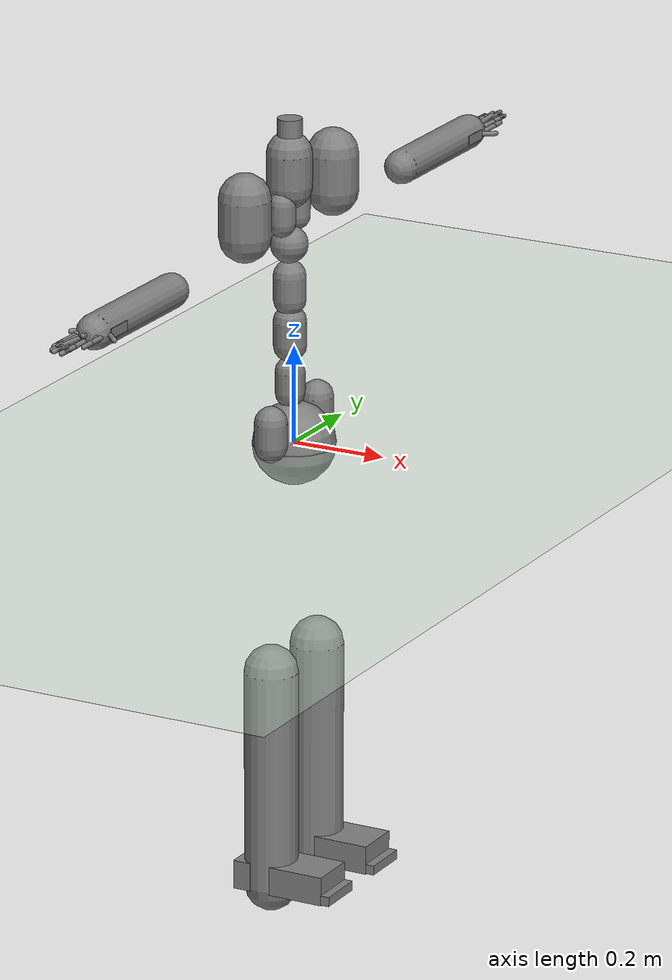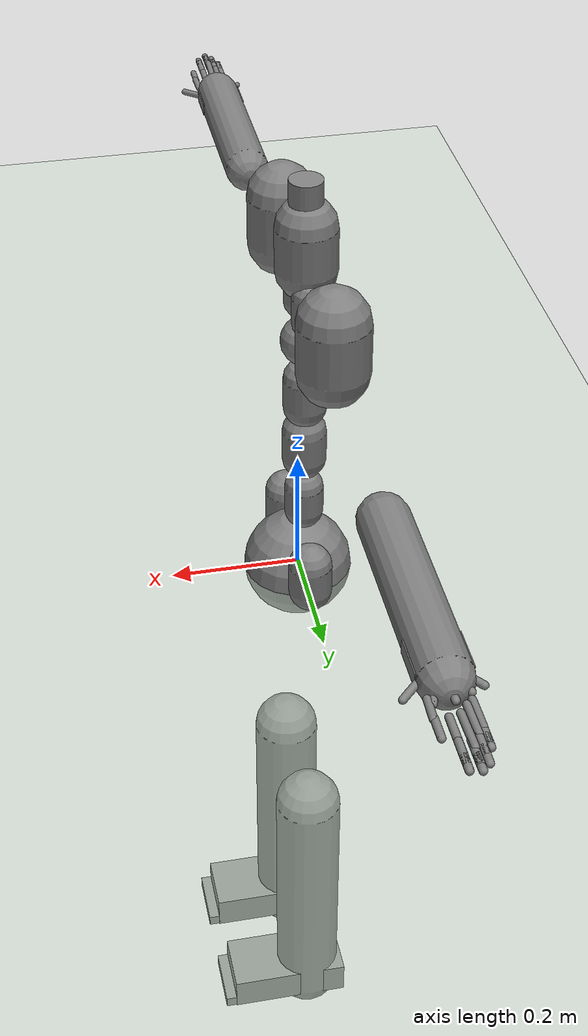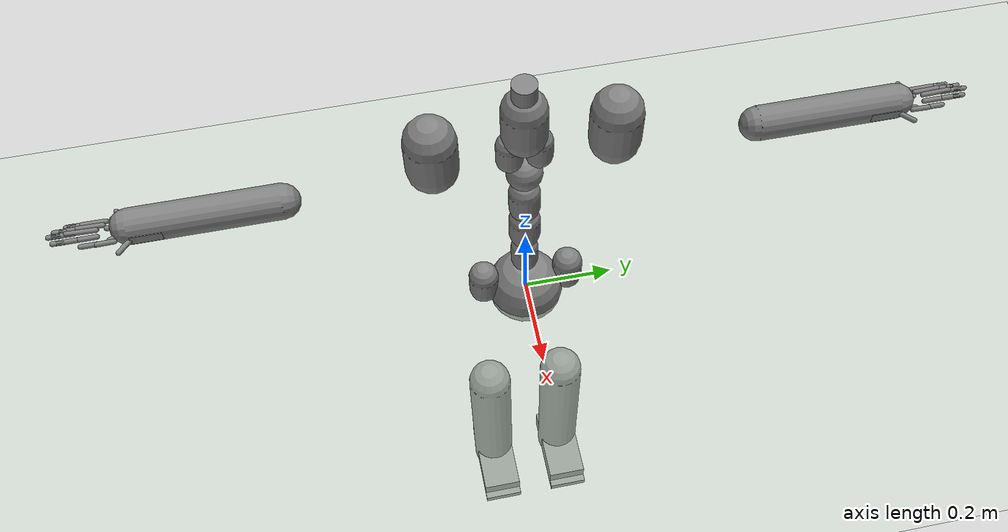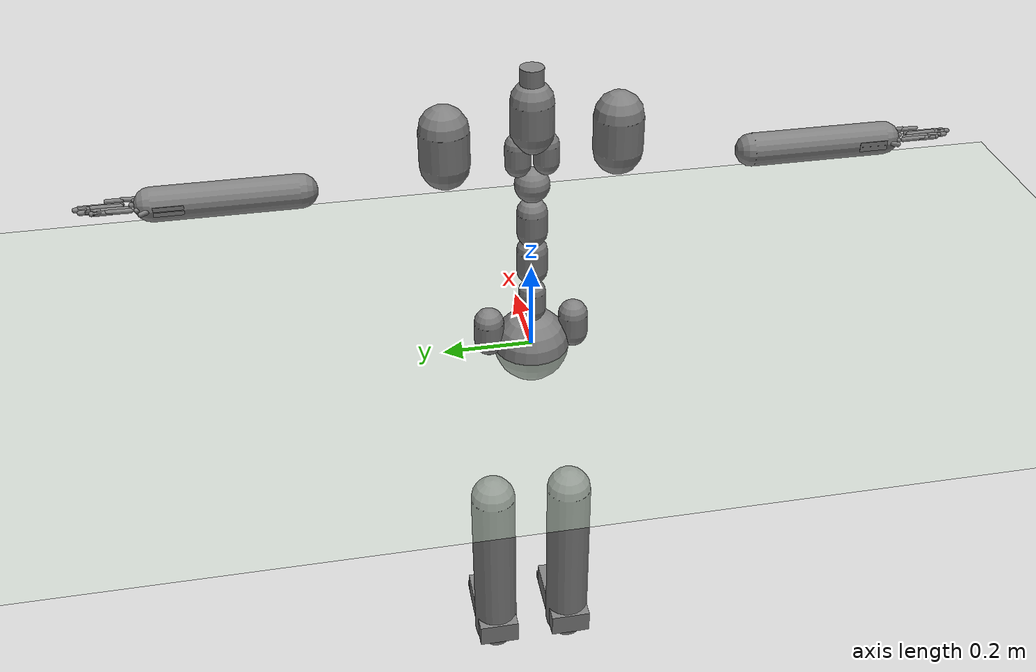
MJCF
<?xml version="1.0" ?>
<mujoco model="humanoid">
  <compiler coordinate="local"/>
  <statistic extent="2" center="0 0 1"/>
  <option timestep="0.00555"/>
  <default>
    <motor ctrlrange="-1 1" ctrllimited="true"/>
    <geom type="capsule" condim="1" friction="1.0 0.05 0.05" solimp=".9 .99 .003" solref=".015 1"/>
    <joint type="hinge" damping="0.1" stiffness="5" armature=".007" limited="true" solimplimit="0 .99 .01"/>
    <site size=".04" group="3"/>
  </default>
  <asset>
    <texture type="skybox" builtin="gradient" rgb1=".4 .5 .6" rgb2="0 0 0" width="100" height="100"/>
    <texture builtin="flat" height="1278" mark="cross" markrgb="1 1 1" name="texgeom" random="0.01" rgb1="0.8 0.6 0.4" rgb2="0.8 0.6 0.4" type="cube" width="127"/>
    <texture builtin="checker" height="100" name="texplane" rgb1="0 0 0" rgb2="0.8 0.8 0.8" type="2d" width="100"/>
    <material name="MatPlane" reflectance="0.5" shininess="1" specular="1" texrepeat="60 60" texture="texplane"/>
    <material name="geom" texture="texgeom" texuniform="true"/>
  </asset>
  <worldbody>
    <light cutoff="100" diffuse="1 1 1" dir="-0 0 -1.3" directional="true" exponent="1" pos="0 0 1.3" specular=".1 .1 .1"/>
    <geom conaffinity="1" condim="3" name="floor" pos="0 0 0" rgba="0.8 0.9 0.8 1" size="100 100 .2" type="plane" material="MatPlane"/>
    <body name="pHipOrigin" pos="0 0 0">
      <freejoint name="pHipOrigin"/>
      <geom type="sphere" contype="1" conaffinity="1" density="4629.6296296296305" size="0.08464" pos="0.0000 0.0000 -0.0000"/>
      <body name="jL5S1" pos="-0.00953761 0 0.08583828">
        <geom type="capsule" contype="1" conaffinity="1" density="1000" fromto="0 0 0.01727 0 0 0.06046" size="0.03023"/>
        <joint name="jL5S1_x" type="hinge" pos="0 0 0" axis="1 0 0" stiffness="500" damping="500" armature="0.02" range="-180.0000 180.0000"/>
        <joint name="jL5S1_y" type="hinge" pos="0 0 0" axis="0 1 0" stiffness="500" damping="500" armature="0.02" range="-180.0000 180.0000"/>
        <joint name="jL5S1_z" type="hinge" pos="0 0 0" axis="0 0 1" stiffness="500" damping="500" armature="0.02" range="-180.0000 180.0000"/>
        <body name="jL4L3" pos="0 0 0.09688687">
          <geom type="capsule" contype="1" conaffinity="1" density="1000" fromto="0 0 0.01938 0 0 0.06782" size="0.03391"/>
          <joint name="jL4L3_x" type="hinge" pos="0 0 0" axis="1 0 0" stiffness="500" damping="500" armature="0.02" range="-180.0000 180.0000"/>
          <joint name="jL4L3_y" type="hinge" pos="0 0 0" axis="0 1 0" stiffness="500" damping="500" armature="0.02" range="-180.0000 180.0000"/>
          <joint name="jL4L3_z" type="hinge" pos="0 0 0" axis="0 0 1" stiffness="500" damping="500" armature="0.02" range="-180.0000 180.0000"/>
          <body name="jL1T12" pos="-0.00073252 0 0.09494799">
            <geom type="capsule" contype="1" conaffinity="1" density="1000" fromto="0 0 0.01899 0 0 0.06647" size="0.03323"/>
            <joint name="jL1T12_x" type="hinge" pos="0 0 0" axis="1 0 0" stiffness="500" damping="500" armature="0.02" range="-180.0000 180.0000"/>
            <joint name="jL1T12_y" type="hinge" pos="0 0 0" axis="0 1 0" stiffness="500" damping="500" armature="0.02" range="-180.0000 180.0000"/>
            <joint name="jL1T12_z" type="hinge" pos="0 0 0" axis="0 0 1" stiffness="500" damping="500" armature="0.02" range="-180.0000 180.0000"/>
            <body name="jT9T8" pos="-0.00073239 0 0.09474658">
              <geom type="sphere" contype="1" conaffinity="1" density="1000" size="0.03790" pos="0.000 0.0000 0.037900"/>
              <joint name="jT9T8_x" type="hinge" pos="0 0 0" axis="1 0 0" stiffness="500" damping="500" armature="0.02" range="-180.0000 180.0000"/>
              <joint name="jT9T8_y" type="hinge" pos="0 0 0" axis="0 1 0" stiffness="500" damping="500" armature="0.02" range="-180.0000 180.0000"/>
              <joint name="jT9T8_z" type="hinge" pos="0 0 0" axis="0 0 1" stiffness="500" damping="500" armature="0.02" range="-180.0000 180.0000"/>
              <body name="jT1C7" pos="0 0 0.13125500">
                <geom type="capsule" contype="1" conaffinity="1" density="1000" fromto="0 0 0.02625 0 0 0.09188" size="0.04594"/>
                <joint name="jT1C7_x" type="hinge" pos="0 0 0" axis="1 0 0" stiffness="500" damping="500" armature="0.02" range="-180.0000 180.0000"/>
                <joint name="jT1C7_y" type="hinge" pos="0 0 0" axis="0 1 0" stiffness="500" damping="500" armature="0.02" range="-180.0000 180.0000"/>
                <joint name="jT1C7_z" type="hinge" pos="0 0 0" axis="0 0 1" stiffness="500" damping="500" armature="0.02" range="-180.0000 180.0000"/>
                <body name="jC1Head" pos="0.00097318 0 0.08248994">
                  <geom type="cylinder" contype="1" conaffinity="1" density="1000" fromto="0 0 0 0 0 0.08250" size="0.02475"/>
                  <joint name="jC1Head_x" type="hinge" pos="0 0 0" axis="1 0 0" stiffness="500" damping="500" armature="0.02" range="-180.0000 180.0000"/>
                  <joint name="jC1Head_y" type="hinge" pos="0 0 0" axis="0 1 0" stiffness="500" damping="500" armature="0.02" range="-180.0000 180.0000"/>
                  <joint name="jC1Head_z" type="hinge" pos="0 0 0" axis="0 0 1" stiffness="500" damping="500" armature="0.02" range="-180.0000 180.0000"/>
                </body>
              </body>
              <body name="jRightT4Shoulder" pos="0 -0.02970395 0.07242476">
                <geom type="capsule" contype="1" conaffinity="1" density="1000" fromto="0 0 0.01566 0 0 0.05480" size="0.02740"/>
                <joint name="jRightT4Shoulder_x" type="hinge" pos="0 0 0" axis="1 0 0" stiffness="500" damping="500" armature="0.02" range="-180.0000 180.0000"/>
                <joint name="jRightT4Shoulder_y" type="hinge" pos="0 0 0" axis="0 1 0" stiffness="500" damping="500" armature="0.02" range="-180.0000 180.0000"/>
                <joint name="jRightT4Shoulder_z" type="hinge" pos="0 0 0" axis="0 0 1" stiffness="500" damping="500" armature="0.02" range="-180.0000 180.0000"/>
                <body name="jRightShoulder" pos="0 -0.14994623 0">
                  <geom type="capsule" contype="1" conaffinity="1" density="1000" fromto="0 0 0.02999 0 0 0.10496" size="0.05248"/>
                  <joint name="jRightShoulder_x" type="hinge" pos="0 0 0" axis="1 0 0" stiffness="500" damping="500" armature="0.02" range="-180.0000 180.0000"/>
                  <joint name="jRightShoulder_y" type="hinge" pos="0 0 0" axis="0 1 0" stiffness="500" damping="500" armature="0.02" range="-180.0000 180.0000"/>
                  <joint name="jRightShoulder_z" type="hinge" pos="0 0 0" axis="0 0 1" stiffness="500" damping="500" armature="0.02" range="-180.0000 180.0000"/>
                  <body name="jRightElbow" pos="0 -0.29101512 0">
                    <geom type="capsule" contype="1" conaffinity="1" density="1000" fromto="0 0 0 0.00000000 -0.29101512 0.00000000" size="0.03492"/>
                    <joint name="jRightElbow_x" type="hinge" pos="0 0 0" axis="1 0 0" stiffness="500" damping="500" armature="0.02" range="-180.0000 180.0000"/>
                    <joint name="jRightElbow_y" type="hinge" pos="0 0 0" axis="0 1 0" stiffness="500" damping="500" armature="0.02" range="-180.0000 180.0000"/>
                    <joint name="jRightElbow_z" type="hinge" pos="0 0 0" axis="0 0 1" stiffness="500" damping="500" armature="0.02" range="-180.0000 180.0000"/>
                    <body name="jRightWrist" pos="0.00010406 -0.25855321 0">
                      <geom density="1000" type="box" pos="0 0 0" size="0.035 0.03 0.01" quat="1.0000 0.0000 0.0000 0.0000"/>
                      <joint name="jRightWrist_x" type="hinge" pos="0 0 0" axis="1 0 0" stiffness="500" damping="500" armature="0.02" range="-180.0000 180.0000"/>
                      <joint name="jRightWrist_y" type="hinge" pos="0 0 0" axis="0 1 0" stiffness="500" damping="500" armature="0.02" range="-180.0000 180.0000"/>
                      <joint name="jRightWrist_z" type="hinge" pos="0 0 0" axis="0 0 1" stiffness="500" damping="500" armature="0.02" range="-180.0000 180.0000"/>
                      <body name="jRightFirstCMC" pos="0.02763121 -0.02648607 -0.00125131">
                        <geom type="capsule" contype="1" conaffinity="1" density="1000" fromto="0 0 0 0.02763121 -0.02648607 -0.00125131" size="0.005"/>
                        <joint name="jRightFirstCMC_x" type="hinge" pos="0 0 0" axis="1 0 0" stiffness="500" damping="500" armature="0.02" range="-180.0000 180.0000"/>
                        <joint name="jRightFirstCMC_y" type="hinge" pos="0 0 0" axis="0 1 0" stiffness="500" damping="500" armature="0.02" range="-180.0000 180.0000"/>
                        <joint name="jRightFirstCMC_z" type="hinge" pos="0 0 0" axis="0 0 1" stiffness="500" damping="500" armature="0.02" range="-180.0000 180.0000"/>
                        <body name="jRightFirstMCP" pos="0.00116102 -0.03276311 0.00069228">
                          <geom type="capsule" contype="1" conaffinity="1" density="1000" fromto="0 0 0 0.00116102 -0.03276311 0.00069228" size="0.005"/>
                          <joint name="jRightFirstMCP_x" type="hinge" pos="0 0 0" axis="1 0 0" stiffness="500" damping="500" armature="0.02" range="-180.0000 180.0000"/>
                          <joint name="jRightFirstMCP_y" type="hinge" pos="0 0 0" axis="0 1 0" stiffness="500" damping="500" armature="0.02" range="-180.0000 180.0000"/>
                          <joint name="jRightFirstMCP_z" type="hinge" pos="0 0 0" axis="0 0 1" stiffness="500" damping="500" armature="0.02" range="-180.0000 180.0000"/>
                          <body name="jRightIP" pos="0 -0.03106665 0">
                            <geom type="capsule" contype="1" conaffinity="1" density="1000" fromto="0 0 0 0.00000000 -0.03106665 0.00000000" size="0.005"/>
                            <joint name="jRightIP_x" type="hinge" pos="0 0 0" axis="1 0 0" stiffness="500" damping="500" armature="0.02" range="-180.0000 180.0000"/>
                            <joint name="jRightIP_y" type="hinge" pos="0 0 0" axis="0 1 0" stiffness="500" damping="500" armature="0.02" range="-180.0000 180.0000"/>
                            <joint name="jRightIP_z" type="hinge" pos="0 0 0" axis="0 0 1" stiffness="500" damping="500" armature="0.02" range="-180.0000 180.0000"/>
                          </body>
                        </body>
                      </body>
                      <body name="jRightSecondCMC" pos="0.01173159 -0.03427599 -0.00059786">
                        <geom type="capsule" contype="1" conaffinity="1" density="1000" fromto="0 0 0 0.01173159 -0.03427599 -0.00059786" size="0.005"/>
                        <joint name="jRightSecondCMC_x" type="hinge" pos="0 0 0" axis="1 0 0" stiffness="500" damping="500" armature="0.02" range="-180.0000 180.0000"/>
                        <joint name="jRightSecondCMC_y" type="hinge" pos="0 0 0" axis="0 1 0" stiffness="500" damping="500" armature="0.02" range="-180.0000 180.0000"/>
                        <joint name="jRightSecondCMC_z" type="hinge" pos="0 0 0" axis="0 0 1" stiffness="500" damping="500" armature="0.02" range="-180.0000 180.0000"/>
                        <body name="jRightSecondMCP" pos="-0.00035692 -0.05692551 -0.00059051">
                          <geom type="capsule" contype="1" conaffinity="1" density="1000" fromto="0 0 0 -0.00035692 -0.05692551 -0.00059051" size="0.005"/>
                          <joint name="jRightSecondMCP_x" type="hinge" pos="0 0 0" axis="1 0 0" stiffness="500" damping="500" armature="0.02" range="-180.0000 180.0000"/>
                          <joint name="jRightSecondMCP_y" type="hinge" pos="0 0 0" axis="0 1 0" stiffness="500" damping="500" armature="0.02" range="-180.0000 180.0000"/>
                          <joint name="jRightSecondMCP_z" type="hinge" pos="0 0 0" axis="0 0 1" stiffness="500" damping="500" armature="0.02" range="-180.0000 180.0000"/>
                          <body name="jRightSecondPIP" pos="0 -0.03702091 0">
                            <geom type="capsule" contype="1" conaffinity="1" density="1000" fromto="0 0 0 0.00000000 -0.03702091 0.00000000" size="0.005"/>
                            <joint name="jRightSecondPIP_x" type="hinge" pos="0 0 0" axis="1 0 0" stiffness="500" damping="500" armature="0.02" range="-180.0000 180.0000"/>
                            <joint name="jRightSecondPIP_y" type="hinge" pos="0 0 0" axis="0 1 0" stiffness="500" damping="500" armature="0.02" range="-180.0000 180.0000"/>
                            <joint name="jRightSecondPIP_z" type="hinge" pos="0 0 0" axis="0 0 1" stiffness="500" damping="500" armature="0.02" range="-180.0000 180.0000"/>
                            <body name="jRightSecondDIP" pos="0 -0.02254881 0">
                              <geom type="capsule" contype="1" conaffinity="1" density="1000" fromto="0 0 0 0.00000000 -0.02254881 0.00000000" size="0.005"/>
                              <joint name="jRightSecondDIP_x" type="hinge" pos="0 0 0" axis="1 0 0" stiffness="500" damping="500" armature="0.02" range="-180.0000 180.0000"/>
                              <joint name="jRightSecondDIP_y" type="hinge" pos="0 0 0" axis="0 1 0" stiffness="500" damping="500" armature="0.02" range="-180.0000 180.0000"/>
                              <joint name="jRightSecondDIP_z" type="hinge" pos="0 0 0" axis="0 0 1" stiffness="500" damping="500" armature="0.02" range="-180.0000 180.0000"/>
                            </body>
                          </body>
                        </body>
                      </body>
                      <body name="jRightThirdCMC" pos="-0.00066589 -0.03600972 0.00151390">
                        <geom type="capsule" contype="1" conaffinity="1" density="1000" fromto="0 0 0 -0.00066589 -0.03600972 0.00151390" size="0.005"/>
                        <joint name="jRightThirdCMC_x" type="hinge" pos="0 0 0" axis="1 0 0" stiffness="500" damping="500" armature="0.02" range="-180.0000 180.0000"/>
                        <joint name="jRightThirdCMC_y" type="hinge" pos="0 0 0" axis="0 1 0" stiffness="500" damping="500" armature="0.02" range="-180.0000 180.0000"/>
                        <joint name="jRightThirdCMC_z" type="hinge" pos="0 0 0" axis="0 0 1" stiffness="500" damping="500" armature="0.02" range="-180.0000 180.0000"/>
                        <body name="jRightThirdMCP" pos="-0.00066797 -0.05534134 0.00150562">
                          <geom type="capsule" contype="1" conaffinity="1" density="1000" fromto="0 0 0 -0.00066797 -0.05534134 0.00150562" size="0.005"/>
                          <joint name="jRightThirdMCP_x" type="hinge" pos="0 0 0" axis="1 0 0" stiffness="500" damping="500" armature="0.02" range="-180.0000 180.0000"/>
                          <joint name="jRightThirdMCP_y" type="hinge" pos="0 0 0" axis="0 1 0" stiffness="500" damping="500" armature="0.02" range="-180.0000 180.0000"/>
                          <joint name="jRightThirdMCP_z" type="hinge" pos="0 0 0" axis="0 0 1" stiffness="500" damping="500" armature="0.02" range="-180.0000 180.0000"/>
                          <body name="jRightThirdPIP" pos="0 -0.04054426 0">
                            <geom type="capsule" contype="1" conaffinity="1" density="1000" fromto="0 0 0 0.00000000 -0.04054426 0.00000000" size="0.005"/>
                            <joint name="jRightThirdPIP_x" type="hinge" pos="0 0 0" axis="1 0 0" stiffness="500" damping="500" armature="0.02" range="-180.0000 180.0000"/>
                            <joint name="jRightThirdPIP_y" type="hinge" pos="0 0 0" axis="0 1 0" stiffness="500" damping="500" armature="0.02" range="-180.0000 180.0000"/>
                            <joint name="jRightThirdPIP_z" type="hinge" pos="0 0 0" axis="0 0 1" stiffness="500" damping="500" armature="0.02" range="-180.0000 180.0000"/>
                            <body name="jRightThirdDIP" pos="0 -0.02398920 0">
                              <geom type="capsule" contype="1" conaffinity="1" density="1000" fromto="0 0 0 0.00000000 -0.02398920 0.00000000" size="0.005"/>
                              <joint name="jRightThirdDIP_x" type="hinge" pos="0 0 0" axis="1 0 0" stiffness="500" damping="500" armature="0.02" range="-180.0000 180.0000"/>
                              <joint name="jRightThirdDIP_y" type="hinge" pos="0 0 0" axis="0 1 0" stiffness="500" damping="500" armature="0.02" range="-180.0000 180.0000"/>
                              <joint name="jRightThirdDIP_z" type="hinge" pos="0 0 0" axis="0 0 1" stiffness="500" damping="500" armature="0.02" range="-180.0000 180.0000"/>
                            </body>
                          </body>
                        </body>
                      </body>
                      <body name="jRightFourthCMC" pos="-0.01101953 -0.03069122 0.00072242">
                        <geom type="capsule" contype="1" conaffinity="1" density="1000" fromto="0 0 0 -0.01101953 -0.03069122 0.00072242" size="0.005"/>
                        <joint name="jRightFourthCMC_x" type="hinge" pos="0 0 0" axis="1 0 0" stiffness="500" damping="500" armature="0.02" range="-180.0000 180.0000"/>
                        <joint name="jRightFourthCMC_y" type="hinge" pos="0 0 0" axis="0 1 0" stiffness="500" damping="500" armature="0.02" range="-180.0000 180.0000"/>
                        <joint name="jRightFourthCMC_z" type="hinge" pos="0 0 0" axis="0 0 1" stiffness="500" damping="500" armature="0.02" range="-180.0000 180.0000"/>
                        <body name="jRightFourthMCP" pos="-0.00035192 -0.04823440 0.00075780">
                          <geom type="capsule" contype="1" conaffinity="1" density="1000" fromto="0 0 0 -0.00035192 -0.04823440 0.00075780" size="0.005"/>
                          <joint name="jRightFourthMCP_x" type="hinge" pos="0 0 0" axis="1 0 0" stiffness="500" damping="500" armature="0.02" range="-180.0000 180.0000"/>
                          <joint name="jRightFourthMCP_y" type="hinge" pos="0 0 0" axis="0 1 0" stiffness="500" damping="500" armature="0.02" range="-180.0000 180.0000"/>
                          <joint name="jRightFourthMCP_z" type="hinge" pos="0 0 0" axis="0 0 1" stiffness="500" damping="500" armature="0.02" range="-180.0000 180.0000"/>
                          <body name="jRightFourthPIP" pos="0 -0.03999473 0">
                            <geom type="capsule" contype="1" conaffinity="1" density="1000" fromto="0 0 0 0.00000000 -0.03999473 0.00000000" size="0.005"/>
                            <joint name="jRightFourthPIP_x" type="hinge" pos="0 0 0" axis="1 0 0" stiffness="500" damping="500" armature="0.02" range="-180.0000 180.0000"/>
                            <joint name="jRightFourthPIP_y" type="hinge" pos="0 0 0" axis="0 1 0" stiffness="500" damping="500" armature="0.02" range="-180.0000 180.0000"/>
                            <joint name="jRightFourthPIP_z" type="hinge" pos="0 0 0" axis="0 0 1" stiffness="500" damping="500" armature="0.02" range="-180.0000 180.0000"/>
                            <body name="jRightFourthDIP" pos="0 -0.02544376 0">
                              <geom type="capsule" contype="1" conaffinity="1" density="1000" fromto="0 0 0 0.00000000 -0.02544376 0.00000000" size="0.005"/>
                              <joint name="jRightFourthDIP_x" type="hinge" pos="0 0 0" axis="1 0 0" stiffness="500" damping="500" armature="0.02" range="-180.0000 180.0000"/>
                              <joint name="jRightFourthDIP_y" type="hinge" pos="0 0 0" axis="0 1 0" stiffness="500" damping="500" armature="0.02" range="-180.0000 180.0000"/>
                              <joint name="jRightFourthDIP_z" type="hinge" pos="0 0 0" axis="0 0 1" stiffness="500" damping="500" armature="0.02" range="-180.0000 180.0000"/>
                            </body>
                          </body>
                        </body>
                      </body>
                      <body name="jRightFifthCMC" pos="-0.01928113 -0.02686606 0.00052998">
                        <geom type="capsule" contype="1" conaffinity="1" density="1000" fromto="0 0 0 -0.01928113 -0.02686606 0.00052998" size="0.005"/>
                        <joint name="jRightFifthCMC_x" type="hinge" pos="0 0 0" axis="1 0 0" stiffness="500" damping="500" armature="0.02" range="-180.0000 180.0000"/>
                        <joint name="jRightFifthCMC_y" type="hinge" pos="0 0 0" axis="0 1 0" stiffness="500" damping="500" armature="0.02" range="-180.0000 180.0000"/>
                        <joint name="jRightFifthCMC_z" type="hinge" pos="0 0 0" axis="0 0 1" stiffness="500" damping="500" armature="0.02" range="-180.0000 180.0000"/>
                        <body name="jRightFifthMCP" pos="-0.00000677 -0.04581328 0.00063045">
                          <geom type="capsule" contype="1" conaffinity="1" density="1000" fromto="0 0 0 -0.00000677 -0.04581328 0.00063045" size="0.005"/>
                          <joint name="jRightFifthMCP_x" type="hinge" pos="0 0 0" axis="1 0 0" stiffness="500" damping="500" armature="0.02" range="-180.0000 180.0000"/>
                          <joint name="jRightFifthMCP_y" type="hinge" pos="0 0 0" axis="0 1 0" stiffness="500" damping="500" armature="0.02" range="-180.0000 180.0000"/>
                          <joint name="jRightFifthMCP_z" type="hinge" pos="0 0 0" axis="0 0 1" stiffness="500" damping="500" armature="0.02" range="-180.0000 180.0000"/>
                          <body name="jRightFifthPIP" pos="0 -0.03579614 0">
                            <geom type="capsule" contype="1" conaffinity="1" density="1000" fromto="0 0 0 0.00000000 -0.03579614 0.00000000" size="0.005"/>
                            <joint name="jRightFifthPIP_x" type="hinge" pos="0 0 0" axis="1 0 0" stiffness="500" damping="500" armature="0.02" range="-180.0000 180.0000"/>
                            <joint name="jRightFifthPIP_y" type="hinge" pos="0 0 0" axis="0 1 0" stiffness="500" damping="500" armature="0.02" range="-180.0000 180.0000"/>
                            <joint name="jRightFifthPIP_z" type="hinge" pos="0 0 0" axis="0 0 1" stiffness="500" damping="500" armature="0.02" range="-180.0000 180.0000"/>
                            <body name="jRightFifthDIP" pos="0 -0.01946779 0">
                              <geom type="capsule" contype="1" conaffinity="1" density="1000" fromto="0 0 0 0.00000000 -0.01946779 0.00000000" size="0.005"/>
                              <joint name="jRightFifthDIP_x" type="hinge" pos="0 0 0" axis="1 0 0" stiffness="500" damping="500" armature="0.02" range="-180.0000 180.0000"/>
                              <joint name="jRightFifthDIP_y" type="hinge" pos="0 0 0" axis="0 1 0" stiffness="500" damping="500" armature="0.02" range="-180.0000 180.0000"/>
                              <joint name="jRightFifthDIP_z" type="hinge" pos="0 0 0" axis="0 0 1" stiffness="500" damping="500" armature="0.02" range="-180.0000 180.0000"/>
                            </body>
                          </body>
                        </body>
                      </body>
                    </body>
                  </body>
                </body>
              </body>
              <body name="jLeftT4Shoulder" pos="0 0.02988828 0.07287419">
                <geom type="capsule" contype="1" conaffinity="1" density="1000" fromto="0 0 0.01575 0 0 0.05514" size="0.02757"/>
                <joint name="jLeftT4Shoulder_x" type="hinge" pos="0 0 0" axis="1 0 0" stiffness="500" damping="500" armature="0.02" range="-180.0000 180.0000"/>
                <joint name="jLeftT4Shoulder_y" type="hinge" pos="0 0 0" axis="0 1 0" stiffness="500" damping="500" armature="0.02" range="-180.0000 180.0000"/>
                <joint name="jLeftT4Shoulder_z" type="hinge" pos="0 0 0" axis="0 0 1" stiffness="500" damping="500" armature="0.02" range="-180.0000 180.0000"/>
                <body name="jLeftShoulder" pos="0 0.14981140 0">
                  <geom type="capsule" contype="1" conaffinity="1" density="1000" fromto="0 0 0.02996 0 0 0.10487" size="0.05243"/>
                  <joint name="jLeftShoulder_x" type="hinge" pos="0 0 0" axis="1 0 0" stiffness="500" damping="500" armature="0.02" range="-180.0000 180.0000"/>
                  <joint name="jLeftShoulder_y" type="hinge" pos="0 0 0" axis="0 1 0" stiffness="500" damping="500" armature="0.02" range="-180.0000 180.0000"/>
                  <joint name="jLeftShoulder_z" type="hinge" pos="0 0 0" axis="0 0 1" stiffness="500" damping="500" armature="0.02" range="-180.0000 180.0000"/>
                  <body name="jLeftElbow" pos="0 0.29203740 0">
                    <geom type="capsule" contype="1" conaffinity="1" density="1000" fromto="0 0 0 0.00000000 0.29203740 0.00000000" size="0.03504"/>
                    <joint name="jLeftElbow_x" type="hinge" pos="0 0 0" axis="1 0 0" stiffness="500" damping="500" armature="0.02" range="-180.0000 180.0000"/>
                    <joint name="jLeftElbow_y" type="hinge" pos="0 0 0" axis="0 1 0" stiffness="500" damping="500" armature="0.02" range="-180.0000 180.0000"/>
                    <joint name="jLeftElbow_z" type="hinge" pos="0 0 0" axis="0 0 1" stiffness="500" damping="500" armature="0.02" range="-180.0000 180.0000"/>
                    <body name="jLeftWrist" pos="0.00010414 0.25875029 0">
                      <geom density="1000" type="box" pos="0 0 0" size="0.035 0.03 0.01" quat="1.0000 0.0000 0.0000 0.0000"/>
                      <joint name="jLeftWrist_x" type="hinge" pos="0 0 0" axis="1 0 0" stiffness="500" damping="500" armature="0.02" range="-180.0000 180.0000"/>
                      <joint name="jLeftWrist_y" type="hinge" pos="0 0 0" axis="0 1 0" stiffness="500" damping="500" armature="0.02" range="-180.0000 180.0000"/>
                      <joint name="jLeftWrist_z" type="hinge" pos="0 0 0" axis="0 0 1" stiffness="500" damping="500" armature="0.02" range="-180.0000 180.0000"/>
                      <body name="jLeftFirstCMC" pos="0.02704445 0.02710832 -0.00121042">
                        <geom type="capsule" contype="1" conaffinity="1" density="1000" fromto="0 0 0 0.02704445 0.02710832 -0.00121042" size="0.005"/>
                        <joint name="jLeftFirstCMC_x" type="hinge" pos="0 0 0" axis="1 0 0" stiffness="500" damping="500" armature="0.02" range="-180.0000 180.0000"/>
                        <joint name="jLeftFirstCMC_y" type="hinge" pos="0 0 0" axis="0 1 0" stiffness="500" damping="500" armature="0.02" range="-180.0000 180.0000"/>
                        <joint name="jLeftFirstCMC_z" type="hinge" pos="0 0 0" axis="0 0 1" stiffness="500" damping="500" armature="0.02" range="-180.0000 180.0000"/>
                        <body name="jLeftFirstMCP" pos="0.00114983 0.03276237 0.00067466">
                          <geom type="capsule" contype="1" conaffinity="1" density="1000" fromto="0 0 0 0.00114983 0.03276237 0.00067466" size="0.005"/>
                          <joint name="jLeftFirstMCP_x" type="hinge" pos="0 0 0" axis="1 0 0" stiffness="500" damping="500" armature="0.02" range="-180.0000 180.0000"/>
                          <joint name="jLeftFirstMCP_y" type="hinge" pos="0 0 0" axis="0 1 0" stiffness="500" damping="500" armature="0.02" range="-180.0000 180.0000"/>
                          <joint name="jLeftFirstMCP_z" type="hinge" pos="0 0 0" axis="0 0 1" stiffness="500" damping="500" armature="0.02" range="-180.0000 180.0000"/>
                          <body name="jLeftIP" pos="0 0.03106665 0">
                            <geom type="capsule" contype="1" conaffinity="1" density="1000" fromto="0 0 0 0.00000000 0.03106665 0.00000000" size="0.005"/>
                            <joint name="jLeftIP_x" type="hinge" pos="0 0 0" axis="1 0 0" stiffness="500" damping="500" armature="0.02" range="-180.0000 180.0000"/>
                            <joint name="jLeftIP_y" type="hinge" pos="0 0 0" axis="0 1 0" stiffness="500" damping="500" armature="0.02" range="-180.0000 180.0000"/>
                            <joint name="jLeftIP_z" type="hinge" pos="0 0 0" axis="0 0 1" stiffness="500" damping="500" armature="0.02" range="-180.0000 180.0000"/>
                          </body>
                        </body>
                      </body>
                      <body name="jLeftSecondCMC" pos="0.01186672 0.03421293 -0.00060279">
                        <geom type="capsule" contype="1" conaffinity="1" density="1000" fromto="0 0 0 0.01186672 0.03421293 -0.00060279" size="0.005"/>
                        <joint name="jLeftSecondCMC_x" type="hinge" pos="0 0 0" axis="1 0 0" stiffness="500" damping="500" armature="0.02" range="-180.0000 180.0000"/>
                        <joint name="jLeftSecondCMC_y" type="hinge" pos="0 0 0" axis="0 1 0" stiffness="500" damping="500" armature="0.02" range="-180.0000 180.0000"/>
                        <joint name="jLeftSecondCMC_z" type="hinge" pos="0 0 0" axis="0 0 1" stiffness="500" damping="500" armature="0.02" range="-180.0000 180.0000"/>
                        <body name="jLeftSecondMCP" pos="-0.00031121 0.05692668 -0.00059780">
                          <geom type="capsule" contype="1" conaffinity="1" density="1000" fromto="0 0 0 -0.00031121 0.05692668 -0.00059780" size="0.005"/>
                          <joint name="jLeftSecondMCP_x" type="hinge" pos="0 0 0" axis="1 0 0" stiffness="500" damping="500" armature="0.02" range="-180.0000 180.0000"/>
                          <joint name="jLeftSecondMCP_y" type="hinge" pos="0 0 0" axis="0 1 0" stiffness="500" damping="500" armature="0.02" range="-180.0000 180.0000"/>
                          <joint name="jLeftSecondMCP_z" type="hinge" pos="0 0 0" axis="0 0 1" stiffness="500" damping="500" armature="0.02" range="-180.0000 180.0000"/>
                          <body name="jLeftSecondPIP" pos="0 0.03702091 0">
                            <geom type="capsule" contype="1" conaffinity="1" density="1000" fromto="0 0 0 0.00000000 0.03702091 0.00000000" size="0.005"/>
                            <joint name="jLeftSecondPIP_x" type="hinge" pos="0 0 0" axis="1 0 0" stiffness="500" damping="500" armature="0.02" range="-180.0000 180.0000"/>
                            <joint name="jLeftSecondPIP_y" type="hinge" pos="0 0 0" axis="0 1 0" stiffness="500" damping="500" armature="0.02" range="-180.0000 180.0000"/>
                            <joint name="jLeftSecondPIP_z" type="hinge" pos="0 0 0" axis="0 0 1" stiffness="500" damping="500" armature="0.02" range="-180.0000 180.0000"/>
                            <body name="jLeftSecondDIP" pos="0 0.02254881 0">
                              <geom type="capsule" contype="1" conaffinity="1" density="1000" fromto="0 0 0 0.00000000 0.02254881 0.00000000" size="0.005"/>
                              <joint name="jLeftSecondDIP_x" type="hinge" pos="0 0 0" axis="1 0 0" stiffness="500" damping="500" armature="0.02" range="-180.0000 180.0000"/>
                              <joint name="jLeftSecondDIP_y" type="hinge" pos="0 0 0" axis="0 1 0" stiffness="500" damping="500" armature="0.02" range="-180.0000 180.0000"/>
                              <joint name="jLeftSecondDIP_z" type="hinge" pos="0 0 0" axis="0 0 1" stiffness="500" damping="500" armature="0.02" range="-180.0000 180.0000"/>
                            </body>
                          </body>
                        </body>
                      </body>
                      <body name="jLeftThirdCMC" pos="-0.00066980 0.03601295 0.00146344">
                        <geom type="capsule" contype="1" conaffinity="1" density="1000" fromto="0 0 0 -0.00066980 0.03601295 0.00146344" size="0.005"/>
                        <joint name="jLeftThirdCMC_x" type="hinge" pos="0 0 0" axis="1 0 0" stiffness="500" damping="500" armature="0.02" range="-180.0000 180.0000"/>
                        <joint name="jLeftThirdCMC_y" type="hinge" pos="0 0 0" axis="0 1 0" stiffness="500" damping="500" armature="0.02" range="-180.0000 180.0000"/>
                        <joint name="jLeftThirdCMC_z" type="hinge" pos="0 0 0" axis="0 0 1" stiffness="500" damping="500" armature="0.02" range="-180.0000 180.0000"/>
                        <body name="jLeftThirdMCP" pos="-0.00067336 0.05534241 0.00147536">
                          <geom type="capsule" contype="1" conaffinity="1" density="1000" fromto="0 0 0 -0.00067336 0.05534241 0.00147536" size="0.005"/>
                          <joint name="jLeftThirdMCP_x" type="hinge" pos="0 0 0" axis="1 0 0" stiffness="500" damping="500" armature="0.02" range="-180.0000 180.0000"/>
                          <joint name="jLeftThirdMCP_y" type="hinge" pos="0 0 0" axis="0 1 0" stiffness="500" damping="500" armature="0.02" range="-180.0000 180.0000"/>
                          <joint name="jLeftThirdMCP_z" type="hinge" pos="0 0 0" axis="0 0 1" stiffness="500" damping="500" armature="0.02" range="-180.0000 180.0000"/>
                          <body name="jLeftThirdPIP" pos="0 0.04054426 0">
                            <geom type="capsule" contype="1" conaffinity="1" density="1000" fromto="0 0 0 0.00000000 0.04054426 0.00000000" size="0.005"/>
                            <joint name="jLeftThirdPIP_x" type="hinge" pos="0 0 0" axis="1 0 0" stiffness="500" damping="500" armature="0.02" range="-180.0000 180.0000"/>
                            <joint name="jLeftThirdPIP_y" type="hinge" pos="0 0 0" axis="0 1 0" stiffness="500" damping="500" armature="0.02" range="-180.0000 180.0000"/>
                            <joint name="jLeftThirdPIP_z" type="hinge" pos="0 0 0" axis="0 0 1" stiffness="500" damping="500" armature="0.02" range="-180.0000 180.0000"/>
                            <body name="jLeftThirdDIP" pos="0 0.02398920 0">
                              <geom type="capsule" contype="1" conaffinity="1" density="1000" fromto="0 0 0 0.00000000 0.02398920 0.00000000" size="0.005"/>
                              <joint name="jLeftThirdDIP_x" type="hinge" pos="0 0 0" axis="1 0 0" stiffness="500" damping="500" armature="0.02" range="-180.0000 180.0000"/>
                              <joint name="jLeftThirdDIP_y" type="hinge" pos="0 0 0" axis="0 1 0" stiffness="500" damping="500" armature="0.02" range="-180.0000 180.0000"/>
                              <joint name="jLeftThirdDIP_z" type="hinge" pos="0 0 0" axis="0 0 1" stiffness="500" damping="500" armature="0.02" range="-180.0000 180.0000"/>
                            </body>
                          </body>
                        </body>
                      </body>
                      <body name="jLeftFourthCMC" pos="-0.01142388 0.03053423 0.00077118">
                        <geom type="capsule" contype="1" conaffinity="1" density="1000" fromto="0 0 0 -0.01142388 0.03053423 0.00077118" size="0.005"/>
                        <joint name="jLeftFourthCMC_x" type="hinge" pos="0 0 0" axis="1 0 0" stiffness="500" damping="500" armature="0.02" range="-180.0000 180.0000"/>
                        <joint name="jLeftFourthCMC_y" type="hinge" pos="0 0 0" axis="0 1 0" stiffness="500" damping="500" armature="0.02" range="-180.0000 180.0000"/>
                        <joint name="jLeftFourthCMC_z" type="hinge" pos="0 0 0" axis="0 0 1" stiffness="500" damping="500" armature="0.02" range="-180.0000 180.0000"/>
                        <body name="jLeftFourthMCP" pos="-0.00037846 0.04823164 0.00080146">
                          <geom type="capsule" contype="1" conaffinity="1" density="1000" fromto="0 0 0 -0.00037846 0.04823164 0.00080146" size="0.005"/>
                          <joint name="jLeftFourthMCP_x" type="hinge" pos="0 0 0" axis="1 0 0" stiffness="500" damping="500" armature="0.02" range="-180.0000 180.0000"/>
                          <joint name="jLeftFourthMCP_y" type="hinge" pos="0 0 0" axis="0 1 0" stiffness="500" damping="500" armature="0.02" range="-180.0000 180.0000"/>
                          <joint name="jLeftFourthMCP_z" type="hinge" pos="0 0 0" axis="0 0 1" stiffness="500" damping="500" armature="0.02" range="-180.0000 180.0000"/>
                          <body name="jLeftFourthPIP" pos="0 0.03999473 0">
                            <geom type="capsule" contype="1" conaffinity="1" density="1000" fromto="0 0 0 0.00000000 0.03999473 0.00000000" size="0.005"/>
                            <joint name="jLeftFourthPIP_x" type="hinge" pos="0 0 0" axis="1 0 0" stiffness="500" damping="500" armature="0.02" range="-180.0000 180.0000"/>
                            <joint name="jLeftFourthPIP_y" type="hinge" pos="0 0 0" axis="0 1 0" stiffness="500" damping="500" armature="0.02" range="-180.0000 180.0000"/>
                            <joint name="jLeftFourthPIP_z" type="hinge" pos="0 0 0" axis="0 0 1" stiffness="500" damping="500" armature="0.02" range="-180.0000 180.0000"/>
                            <body name="jLeftFourthDIP" pos="0 0.02544376 0">
                              <geom type="capsule" contype="1" conaffinity="1" density="1000" fromto="0 0 0 0.00000000 0.02544376 0.00000000" size="0.005"/>
                              <joint name="jLeftFourthDIP_x" type="hinge" pos="0 0 0" axis="1 0 0" stiffness="500" damping="500" armature="0.02" range="-180.0000 180.0000"/>
                              <joint name="jLeftFourthDIP_y" type="hinge" pos="0 0 0" axis="0 1 0" stiffness="500" damping="500" armature="0.02" range="-180.0000 180.0000"/>
                              <joint name="jLeftFourthDIP_z" type="hinge" pos="0 0 0" axis="0 0 1" stiffness="500" damping="500" armature="0.02" range="-180.0000 180.0000"/>
                            </body>
                          </body>
                        </body>
                      </body>
                      <body name="jLeftFifthCMC" pos="-0.01986523 0.02644133 0.00053850">
                        <geom type="capsule" contype="1" conaffinity="1" density="1000" fromto="0 0 0 -0.01986523 0.02644133 0.00053850" size="0.005"/>
                        <joint name="jLeftFifthCMC_x" type="hinge" pos="0 0 0" axis="1 0 0" stiffness="500" damping="500" armature="0.02" range="-180.0000 180.0000"/>
                        <joint name="jLeftFifthCMC_y" type="hinge" pos="0 0 0" axis="0 1 0" stiffness="500" damping="500" armature="0.02" range="-180.0000 180.0000"/>
                        <joint name="jLeftFifthCMC_z" type="hinge" pos="0 0 0" axis="0 0 1" stiffness="500" damping="500" armature="0.02" range="-180.0000 180.0000"/>
                        <body name="jLeftFifthMCP" pos="-0.00001299 0.04581203 0.00065921">
                          <geom type="capsule" contype="1" conaffinity="1" density="1000" fromto="0 0 0 -0.00001299 0.04581203 0.00065921" size="0.005"/>
                          <joint name="jLeftFifthMCP_x" type="hinge" pos="0 0 0" axis="1 0 0" stiffness="500" damping="500" armature="0.02" range="-180.0000 180.0000"/>
                          <joint name="jLeftFifthMCP_y" type="hinge" pos="0 0 0" axis="0 1 0" stiffness="500" damping="500" armature="0.02" range="-180.0000 180.0000"/>
                          <joint name="jLeftFifthMCP_z" type="hinge" pos="0 0 0" axis="0 0 1" stiffness="500" damping="500" armature="0.02" range="-180.0000 180.0000"/>
                          <body name="jLeftFifthPIP" pos="0 0.03579614 0">
                            <geom type="capsule" contype="1" conaffinity="1" density="1000" fromto="0 0 0 0.00000000 0.03579614 0.00000000" size="0.005"/>
                            <joint name="jLeftFifthPIP_x" type="hinge" pos="0 0 0" axis="1 0 0" stiffness="500" damping="500" armature="0.02" range="-180.0000 180.0000"/>
                            <joint name="jLeftFifthPIP_y" type="hinge" pos="0 0 0" axis="0 1 0" stiffness="500" damping="500" armature="0.02" range="-180.0000 180.0000"/>
                            <joint name="jLeftFifthPIP_z" type="hinge" pos="0 0 0" axis="0 0 1" stiffness="500" damping="500" armature="0.02" range="-180.0000 180.0000"/>
                            <body name="jLeftFifthDIP" pos="0 0.01946779 0">
                              <geom type="capsule" contype="1" conaffinity="1" density="1000" fromto="0 0 0 0.00000000 0.01946779 0.00000000" size="0.005"/>
                              <joint name="jLeftFifthDIP_x" type="hinge" pos="0 0 0" axis="1 0 0" stiffness="500" damping="500" armature="0.02" range="-180.0000 180.0000"/>
                              <joint name="jLeftFifthDIP_y" type="hinge" pos="0 0 0" axis="0 1 0" stiffness="500" damping="500" armature="0.02" range="-180.0000 180.0000"/>
                              <joint name="jLeftFifthDIP_z" type="hinge" pos="0 0 0" axis="0 0 1" stiffness="500" damping="500" armature="0.02" range="-180.0000 180.0000"/>
                            </body>
                          </body>
                        </body>
                      </body>
                    </body>
                  </body>
                </body>
              </body>
            </body>
          </body>
        </body>
      </body>
      <body name="jRightHip" pos="-0.00016052 -0.09526322 0.00144511">
        <geom type="capsule" contype="1" conaffinity="1" density="1000" fromto="0 0 0.01905 0 0 0.06669" size="0.03335"/>
        <joint name="jRightHip_x" type="hinge" pos="0 0 0" axis="1 0 0" stiffness="500" damping="500" armature="0.02" range="-180.0000 180.0000"/>
        <joint name="jRightHip_y" type="hinge" pos="0 0 0" axis="0 1 0" stiffness="500" damping="500" armature="0.02" range="-180.0000 180.0000"/>
        <joint name="jRightHip_z" type="hinge" pos="0 0 0" axis="0 0 1" stiffness="500" damping="500" armature="0.02" range="-180.0000 180.0000"/>
        <body name="jRightKnee" pos="0.00005446 0 -0.45676440">
          <geom type="capsule" contype="1" conaffinity="1" density="1000" fromto="0 0 0 0.00005446 0.00000000 -0.45676440" size="0.05481"/>
          <joint name="jRightKnee_x" type="hinge" pos="0 0 0" axis="1 0 0" stiffness="500" damping="500" armature="0.02" range="-180.0000 180.0000"/>
          <joint name="jRightKnee_y" type="hinge" pos="0 0 0" axis="0 1 0" stiffness="500" damping="500" armature="0.02" range="-180.0000 180.0000"/>
          <joint name="jRightKnee_z" type="hinge" pos="0 0 0" axis="0 0 1" stiffness="500" damping="500" armature="0.02" range="-180.0000 180.0000"/>
          <body name="jRightAnkle" pos="0.00045312 0 -0.40129265">
            <geom density="1000" type="box" pos="0.04 0. -0.03" size="0.1 0.05 0.03" quat="1.0 0 0 0"/>
            <joint name="jRightAnkle_x" type="hinge" pos="0 0 0" axis="1 0 0" stiffness="500" damping="500" armature="0.02" range="-180.0000 180.0000"/>
            <joint name="jRightAnkle_y" type="hinge" pos="0 0 0" axis="0 1 0" stiffness="500" damping="500" armature="0.02" range="-180.0000 180.0000"/>
            <joint name="jRightAnkle_z" type="hinge" pos="0 0 0" axis="0 0 1" stiffness="500" damping="500" armature="0.02" range="-180.0000 180.0000"/>
            <body name="jRightBallFoot" pos="0.14828235 0 -0.06802617">
              <geom density="1000" type="box" pos="0 0 0.02" size="0.01 0.05 0.01" quat="1.0 0 0 0"/>
              <joint name="jRightBallFoot_x" type="hinge" pos="0 0 0" axis="1 0 0" stiffness="500" damping="500" armature="0.02" range="-180.0000 180.0000"/>
              <joint name="jRightBallFoot_y" type="hinge" pos="0 0 0" axis="0 1 0" stiffness="500" damping="500" armature="0.02" range="-180.0000 180.0000"/>
              <joint name="jRightBallFoot_z" type="hinge" pos="0 0 0" axis="0 0 1" stiffness="500" damping="500" armature="0.02" range="-180.0000 180.0000"/>
            </body>
          </body>
        </body>
      </body>
      <body name="jLeftHip" pos="-0.00015972 0.09602591 0.00143742">
        <geom type="capsule" contype="1" conaffinity="1" density="1000" fromto="0 0 0.01921 0 0 0.06723" size="0.03361"/>
        <joint name="jLeftHip_x" type="hinge" pos="0 0 0" axis="1 0 0" stiffness="500" damping="500" armature="0.02" range="-180.0000 180.0000"/>
        <joint name="jLeftHip_y" type="hinge" pos="0 0 0" axis="0 1 0" stiffness="500" damping="500" armature="0.02" range="-180.0000 180.0000"/>
        <joint name="jLeftHip_z" type="hinge" pos="0 0 0" axis="0 0 1" stiffness="500" damping="500" armature="0.02" range="-180.0000 180.0000"/>
        <body name="jLeftKnee" pos="0.00005451 0 -0.45718720">
          <geom type="capsule" contype="1" conaffinity="1" density="1000" fromto="0 0 0 0.00005451 0.00000000 -0.45718720" size="0.05486"/>
          <joint name="jLeftKnee_x" type="hinge" pos="0 0 0" axis="1 0 0" stiffness="500" damping="500" armature="0.02" range="-180.0000 180.0000"/>
          <joint name="jLeftKnee_y" type="hinge" pos="0 0 0" axis="0 1 0" stiffness="500" damping="500" armature="0.02" range="-180.0000 180.0000"/>
          <joint name="jLeftKnee_z" type="hinge" pos="0 0 0" axis="0 0 1" stiffness="500" damping="500" armature="0.02" range="-180.0000 180.0000"/>
          <body name="jLeftAnkle" pos="0.00045312 0 -0.40129262">
            <geom density="1000" type="box" pos="0.04 0. -0.03" size="0.1 0.05 0.03" quat="1.0 0 0 0"/>
            <joint name="jLeftAnkle_x" type="hinge" pos="0 0 0" axis="1 0 0" stiffness="500" damping="500" armature="0.02" range="-180.0000 180.0000"/>
            <joint name="jLeftAnkle_y" type="hinge" pos="0 0 0" axis="0 1 0" stiffness="500" damping="500" armature="0.02" range="-180.0000 180.0000"/>
            <joint name="jLeftAnkle_z" type="hinge" pos="0 0 0" axis="0 0 1" stiffness="500" damping="500" armature="0.02" range="-180.0000 180.0000"/>
            <body name="jLeftBallFoot" pos="0.14828234 0 -0.06802616">
              <geom density="1000" type="box" pos="0 0 0.02" size="0.01 0.05 0.01" quat="1.0 0 0 0"/>
              <joint name="jLeftBallFoot_x" type="hinge" pos="0 0 0" axis="1 0 0" stiffness="500" damping="500" armature="0.02" range="-180.0000 180.0000"/>
              <joint name="jLeftBallFoot_y" type="hinge" pos="0 0 0" axis="0 1 0" stiffness="500" damping="500" armature="0.02" range="-180.0000 180.0000"/>
              <joint name="jLeftBallFoot_z" type="hinge" pos="0 0 0" axis="0 0 1" stiffness="500" damping="500" armature="0.02" range="-180.0000 180.0000"/>
            </body>
          </body>
        </body>
      </body>
    </body>
  </worldbody>
  <actuator>
    <motor name="jL5S1_x" joint="jL5S1_x" gear="500"/>
    <motor name="jL5S1_y" joint="jL5S1_y" gear="500"/>
    <motor name="jL5S1_z" joint="jL5S1_z" gear="500"/>
    <motor name="jL4L3_x" joint="jL4L3_x" gear="500"/>
    <motor name="jL4L3_y" joint="jL4L3_y" gear="500"/>
    <motor name="jL4L3_z" joint="jL4L3_z" gear="500"/>
    <motor name="jL1T12_x" joint="jL1T12_x" gear="500"/>
    <motor name="jL1T12_y" joint="jL1T12_y" gear="500"/>
    <motor name="jL1T12_z" joint="jL1T12_z" gear="500"/>
    <motor name="jT9T8_x" joint="jT9T8_x" gear="500"/>
    <motor name="jT9T8_y" joint="jT9T8_y" gear="500"/>
    <motor name="jT9T8_z" joint="jT9T8_z" gear="500"/>
    <motor name="jT1C7_x" joint="jT1C7_x" gear="500"/>
    <motor name="jT1C7_y" joint="jT1C7_y" gear="500"/>
    <motor name="jT1C7_z" joint="jT1C7_z" gear="500"/>
    <motor name="jC1Head_x" joint="jC1Head_x" gear="500"/>
    <motor name="jC1Head_y" joint="jC1Head_y" gear="500"/>
    <motor name="jC1Head_z" joint="jC1Head_z" gear="500"/>
    <motor name="jRightT4Shoulder_x" joint="jRightT4Shoulder_x" gear="500"/>
    <motor name="jRightT4Shoulder_y" joint="jRightT4Shoulder_y" gear="500"/>
    <motor name="jRightT4Shoulder_z" joint="jRightT4Shoulder_z" gear="500"/>
    <motor name="jRightShoulder_x" joint="jRightShoulder_x" gear="500"/>
    <motor name="jRightShoulder_y" joint="jRightShoulder_y" gear="500"/>
    <motor name="jRightShoulder_z" joint="jRightShoulder_z" gear="500"/>
    <motor name="jRightElbow_x" joint="jRightElbow_x" gear="500"/>
    <motor name="jRightElbow_y" joint="jRightElbow_y" gear="500"/>
    <motor name="jRightElbow_z" joint="jRightElbow_z" gear="500"/>
    <motor name="jRightWrist_x" joint="jRightWrist_x" gear="500"/>
    <motor name="jRightWrist_y" joint="jRightWrist_y" gear="500"/>
    <motor name="jRightWrist_z" joint="jRightWrist_z" gear="500"/>
    <motor name="jLeftT4Shoulder_x" joint="jLeftT4Shoulder_x" gear="500"/>
    <motor name="jLeftT4Shoulder_y" joint="jLeftT4Shoulder_y" gear="500"/>
    <motor name="jLeftT4Shoulder_z" joint="jLeftT4Shoulder_z" gear="500"/>
    <motor name="jLeftShoulder_x" joint="jLeftShoulder_x" gear="500"/>
    <motor name="jLeftShoulder_y" joint="jLeftShoulder_y" gear="500"/>
    <motor name="jLeftShoulder_z" joint="jLeftShoulder_z" gear="500"/>
    <motor name="jLeftElbow_x" joint="jLeftElbow_x" gear="500"/>
    <motor name="jLeftElbow_y" joint="jLeftElbow_y" gear="500"/>
    <motor name="jLeftElbow_z" joint="jLeftElbow_z" gear="500"/>
    <motor name="jLeftWrist_x" joint="jLeftWrist_x" gear="500"/>
    <motor name="jLeftWrist_y" joint="jLeftWrist_y" gear="500"/>
    <motor name="jLeftWrist_z" joint="jLeftWrist_z" gear="500"/>
    <motor name="jRightHip_x" joint="jRightHip_x" gear="500"/>
    <motor name="jRightHip_y" joint="jRightHip_y" gear="500"/>
    <motor name="jRightHip_z" joint="jRightHip_z" gear="500"/>
    <motor name="jRightKnee_x" joint="jRightKnee_x" gear="500"/>
    <motor name="jRightKnee_y" joint="jRightKnee_y" gear="500"/>
    <motor name="jRightKnee_z" joint="jRightKnee_z" gear="500"/>
    <motor name="jRightAnkle_x" joint="jRightAnkle_x" gear="500"/>
    <motor name="jRightAnkle_y" joint="jRightAnkle_y" gear="500"/>
    <motor name="jRightAnkle_z" joint="jRightAnkle_z" gear="500"/>
    <motor name="jRightBallFoot_x" joint="jRightBallFoot_x" gear="500"/>
    <motor name="jRightBallFoot_y" joint="jRightBallFoot_y" gear="500"/>
    <motor name="jRightBallFoot_z" joint="jRightBallFoot_z" gear="500"/>
    <motor name="jLeftHip_x" joint="jLeftHip_x" gear="500"/>
    <motor name="jLeftHip_y" joint="jLeftHip_y" gear="500"/>
    <motor name="jLeftHip_z" joint="jLeftHip_z" gear="500"/>
    <motor name="jLeftKnee_x" joint="jLeftKnee_x" gear="500"/>
    <motor name="jLeftKnee_y" joint="jLeftKnee_y" gear="500"/>
    <motor name="jLeftKnee_z" joint="jLeftKnee_z" gear="500"/>
    <motor name="jLeftAnkle_x" joint="jLeftAnkle_x" gear="500"/>
    <motor name="jLeftAnkle_y" joint="jLeftAnkle_y" gear="500"/>
    <motor name="jLeftAnkle_z" joint="jLeftAnkle_z" gear="500"/>
    <motor name="jLeftBallFoot_x" joint="jLeftBallFoot_x" gear="500"/>
    <motor name="jLeftBallFoot_y" joint="jLeftBallFoot_y" gear="500"/>
    <motor name="jLeftBallFoot_z" joint="jLeftBallFoot_z" gear="500"/>
    <motor name="jLeftFirstCMC_x" joint="jLeftFirstCMC_x" gear="500"/>
    <motor name="jLeftFirstCMC_y" joint="jLeftFirstCMC_y" gear="500"/>
    <motor name="jLeftFirstCMC_z" joint="jLeftFirstCMC_z" gear="500"/>
    <motor name="jLeftFirstMCP_x" joint="jLeftFirstMCP_x" gear="500"/>
    <motor name="jLeftFirstMCP_y" joint="jLeftFirstMCP_y" gear="500"/>
    <motor name="jLeftFirstMCP_z" joint="jLeftFirstMCP_z" gear="500"/>
    <motor name="jLeftIP_x" joint="jLeftIP_x" gear="500"/>
    <motor name="jLeftIP_y" joint="jLeftIP_y" gear="500"/>
    <motor name="jLeftIP_z" joint="jLeftIP_z" gear="500"/>
    <motor name="jLeftSecondCMC_x" joint="jLeftSecondCMC_x" gear="500"/>
    <motor name="jLeftSecondCMC_y" joint="jLeftSecondCMC_y" gear="500"/>
    <motor name="jLeftSecondCMC_z" joint="jLeftSecondCMC_z" gear="500"/>
    <motor name="jLeftSecondMCP_x" joint="jLeftSecondMCP_x" gear="500"/>
    <motor name="jLeftSecondMCP_y" joint="jLeftSecondMCP_y" gear="500"/>
    <motor name="jLeftSecondMCP_z" joint="jLeftSecondMCP_z" gear="500"/>
    <motor name="jLeftSecondPIP_x" joint="jLeftSecondPIP_x" gear="500"/>
    <motor name="jLeftSecondPIP_y" joint="jLeftSecondPIP_y" gear="500"/>
    <motor name="jLeftSecondPIP_z" joint="jLeftSecondPIP_z" gear="500"/>
    <motor name="jLeftSecondDIP_x" joint="jLeftSecondDIP_x" gear="500"/>
    <motor name="jLeftSecondDIP_y" joint="jLeftSecondDIP_y" gear="500"/>
    <motor name="jLeftSecondDIP_z" joint="jLeftSecondDIP_z" gear="500"/>
    <motor name="jLeftThirdCMC_x" joint="jLeftThirdCMC_x" gear="500"/>
    <motor name="jLeftThirdCMC_y" joint="jLeftThirdCMC_y" gear="500"/>
    <motor name="jLeftThirdCMC_z" joint="jLeftThirdCMC_z" gear="500"/>
    <motor name="jLeftThirdMCP_x" joint="jLeftThirdMCP_x" gear="500"/>
    <motor name="jLeftThirdMCP_y" joint="jLeftThirdMCP_y" gear="500"/>
    <motor name="jLeftThirdMCP_z" joint="jLeftThirdMCP_z" gear="500"/>
    <motor name="jLeftThirdPIP_x" joint="jLeftThirdPIP_x" gear="500"/>
    <motor name="jLeftThirdPIP_y" joint="jLeftThirdPIP_y" gear="500"/>
    <motor name="jLeftThirdPIP_z" joint="jLeftThirdPIP_z" gear="500"/>
    <motor name="jLeftThirdDIP_x" joint="jLeftThirdDIP_x" gear="500"/>
    <motor name="jLeftThirdDIP_y" joint="jLeftThirdDIP_y" gear="500"/>
    <motor name="jLeftThirdDIP_z" joint="jLeftThirdDIP_z" gear="500"/>
    <motor name="jLeftFourthCMC_x" joint="jLeftFourthCMC_x" gear="500"/>
    <motor name="jLeftFourthCMC_y" joint="jLeftFourthCMC_y" gear="500"/>
    <motor name="jLeftFourthCMC_z" joint="jLeftFourthCMC_z" gear="500"/>
    <motor name="jLeftFourthMCP_x" joint="jLeftFourthMCP_x" gear="500"/>
    <motor name="jLeftFourthMCP_y" joint="jLeftFourthMCP_y" gear="500"/>
    <motor name="jLeftFourthMCP_z" joint="jLeftFourthMCP_z" gear="500"/>
    <motor name="jLeftFourthPIP_x" joint="jLeftFourthPIP_x" gear="500"/>
    <motor name="jLeftFourthPIP_y" joint="jLeftFourthPIP_y" gear="500"/>
    <motor name="jLeftFourthPIP_z" joint="jLeftFourthPIP_z" gear="500"/>
    <motor name="jLeftFourthDIP_x" joint="jLeftFourthDIP_x" gear="500"/>
    <motor name="jLeftFourthDIP_y" joint="jLeftFourthDIP_y" gear="500"/>
    <motor name="jLeftFourthDIP_z" joint="jLeftFourthDIP_z" gear="500"/>
    <motor name="jLeftFifthCMC_x" joint="jLeftFifthCMC_x" gear="500"/>
    <motor name="jLeftFifthCMC_y" joint="jLeftFifthCMC_y" gear="500"/>
    <motor name="jLeftFifthCMC_z" joint="jLeftFifthCMC_z" gear="500"/>
    <motor name="jLeftFifthMCP_x" joint="jLeftFifthMCP_x" gear="500"/>
    <motor name="jLeftFifthMCP_y" joint="jLeftFifthMCP_y" gear="500"/>
    <motor name="jLeftFifthMCP_z" joint="jLeftFifthMCP_z" gear="500"/>
    <motor name="jLeftFifthPIP_x" joint="jLeftFifthPIP_x" gear="500"/>
    <motor name="jLeftFifthPIP_y" joint="jLeftFifthPIP_y" gear="500"/>
    <motor name="jLeftFifthPIP_z" joint="jLeftFifthPIP_z" gear="500"/>
    <motor name="jLeftFifthDIP_x" joint="jLeftFifthDIP_x" gear="500"/>
    <motor name="jLeftFifthDIP_y" joint="jLeftFifthDIP_y" gear="500"/>
    <motor name="jLeftFifthDIP_z" joint="jLeftFifthDIP_z" gear="500"/>
    <motor name="jRightFirstCMC_x" joint="jRightFirstCMC_x" gear="500"/>
    <motor name="jRightFirstCMC_y" joint="jRightFirstCMC_y" gear="500"/>
    <motor name="jRightFirstCMC_z" joint="jRightFirstCMC_z" gear="500"/>
    <motor name="jRightFirstMCP_x" joint="jRightFirstMCP_x" gear="500"/>
    <motor name="jRightFirstMCP_y" joint="jRightFirstMCP_y" gear="500"/>
    <motor name="jRightFirstMCP_z" joint="jRightFirstMCP_z" gear="500"/>
    <motor name="jRightIP_x" joint="jRightIP_x" gear="500"/>
    <motor name="jRightIP_y" joint="jRightIP_y" gear="500"/>
    <motor name="jRightIP_z" joint="jRightIP_z" gear="500"/>
    <motor name="jRightSecondCMC_x" joint="jRightSecondCMC_x" gear="500"/>
    <motor name="jRightSecondCMC_y" joint="jRightSecondCMC_y" gear="500"/>
    <motor name="jRightSecondCMC_z" joint="jRightSecondCMC_z" gear="500"/>
    <motor name="jRightSecondMCP_x" joint="jRightSecondMCP_x" gear="500"/>
    <motor name="jRightSecondMCP_y" joint="jRightSecondMCP_y" gear="500"/>
    <motor name="jRightSecondMCP_z" joint="jRightSecondMCP_z" gear="500"/>
    <motor name="jRightSecondPIP_x" joint="jRightSecondPIP_x" gear="500"/>
    <motor name="jRightSecondPIP_y" joint="jRightSecondPIP_y" gear="500"/>
    <motor name="jRightSecondPIP_z" joint="jRightSecondPIP_z" gear="500"/>
    <motor name="jRightSecondDIP_x" joint="jRightSecondDIP_x" gear="500"/>
    <motor name="jRightSecondDIP_y" joint="jRightSecondDIP_y" gear="500"/>
    <motor name="jRightSecondDIP_z" joint="jRightSecondDIP_z" gear="500"/>
    <motor name="jRightThirdCMC_x" joint="jRightThirdCMC_x" gear="500"/>
    <motor name="jRightThirdCMC_y" joint="jRightThirdCMC_y" gear="500"/>
    <motor name="jRightThirdCMC_z" joint="jRightThirdCMC_z" gear="500"/>
    <motor name="jRightThirdMCP_x" joint="jRightThirdMCP_x" gear="500"/>
    <motor name="jRightThirdMCP_y" joint="jRightThirdMCP_y" gear="500"/>
    <motor name="jRightThirdMCP_z" joint="jRightThirdMCP_z" gear="500"/>
    <motor name="jRightThirdPIP_x" joint="jRightThirdPIP_x" gear="500"/>
    <motor name="jRightThirdPIP_y" joint="jRightThirdPIP_y" gear="500"/>
    <motor name="jRightThirdPIP_z" joint="jRightThirdPIP_z" gear="500"/>
    <motor name="jRightThirdDIP_x" joint="jRightThirdDIP_x" gear="500"/>
    <motor name="jRightThirdDIP_y" joint="jRightThirdDIP_y" gear="500"/>
    <motor name="jRightThirdDIP_z" joint="jRightThirdDIP_z" gear="500"/>
    <motor name="jRightFourthCMC_x" joint="jRightFourthCMC_x" gear="500"/>
    <motor name="jRightFourthCMC_y" joint="jRightFourthCMC_y" gear="500"/>
    <motor name="jRightFourthCMC_z" joint="jRightFourthCMC_z" gear="500"/>
    <motor name="jRightFourthMCP_x" joint="jRightFourthMCP_x" gear="500"/>
    <motor name="jRightFourthMCP_y" joint="jRightFourthMCP_y" gear="500"/>
    <motor name="jRightFourthMCP_z" joint="jRightFourthMCP_z" gear="500"/>
    <motor name="jRightFourthPIP_x" joint="jRightFourthPIP_x" gear="500"/>
    <motor name="jRightFourthPIP_y" joint="jRightFourthPIP_y" gear="500"/>
    <motor name="jRightFourthPIP_z" joint="jRightFourthPIP_z" gear="500"/>
    <motor name="jRightFourthDIP_x" joint="jRightFourthDIP_x" gear="500"/>
    <motor name="jRightFourthDIP_y" joint="jRightFourthDIP_y" gear="500"/>
    <motor name="jRightFourthDIP_z" joint="jRightFourthDIP_z" gear="500"/>
    <motor name="jRightFifthCMC_x" joint="jRightFifthCMC_x" gear="500"/>
    <motor name="jRightFifthCMC_y" joint="jRightFifthCMC_y" gear="500"/>
    <motor name="jRightFifthCMC_z" joint="jRightFifthCMC_z" gear="500"/>
    <motor name="jRightFifthMCP_x" joint="jRightFifthMCP_x" gear="500"/>
    <motor name="jRightFifthMCP_y" joint="jRightFifthMCP_y" gear="500"/>
    <motor name="jRightFifthMCP_z" joint="jRightFifthMCP_z" gear="500"/>
    <motor name="jRightFifthPIP_x" joint="jRightFifthPIP_x" gear="500"/>
    <motor name="jRightFifthPIP_y" joint="jRightFifthPIP_y" gear="500"/>
    <motor name="jRightFifthPIP_z" joint="jRightFifthPIP_z" gear="500"/>
    <motor name="jRightFifthDIP_x" joint="jRightFifthDIP_x" gear="500"/>
    <motor name="jRightFifthDIP_y" joint="jRightFifthDIP_y" gear="500"/>
    <motor name="jRightFifthDIP_z" joint="jRightFifthDIP_z" gear="500"/>
  </actuator>
</mujoco>
